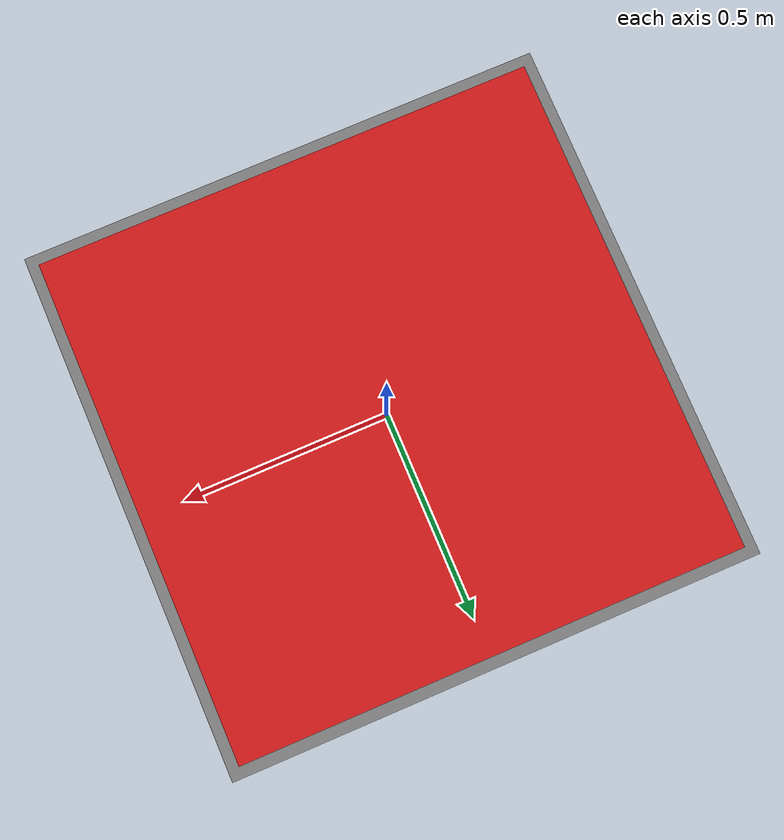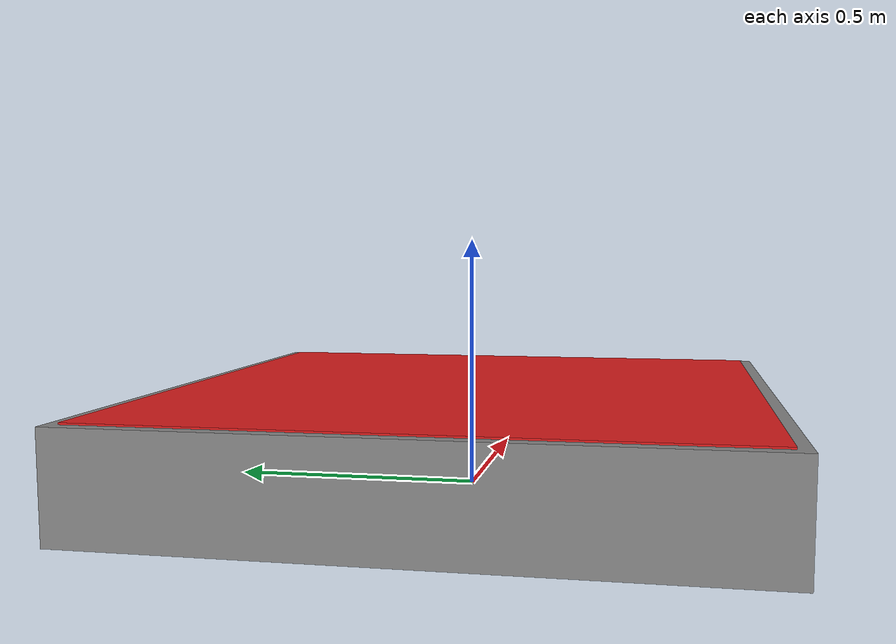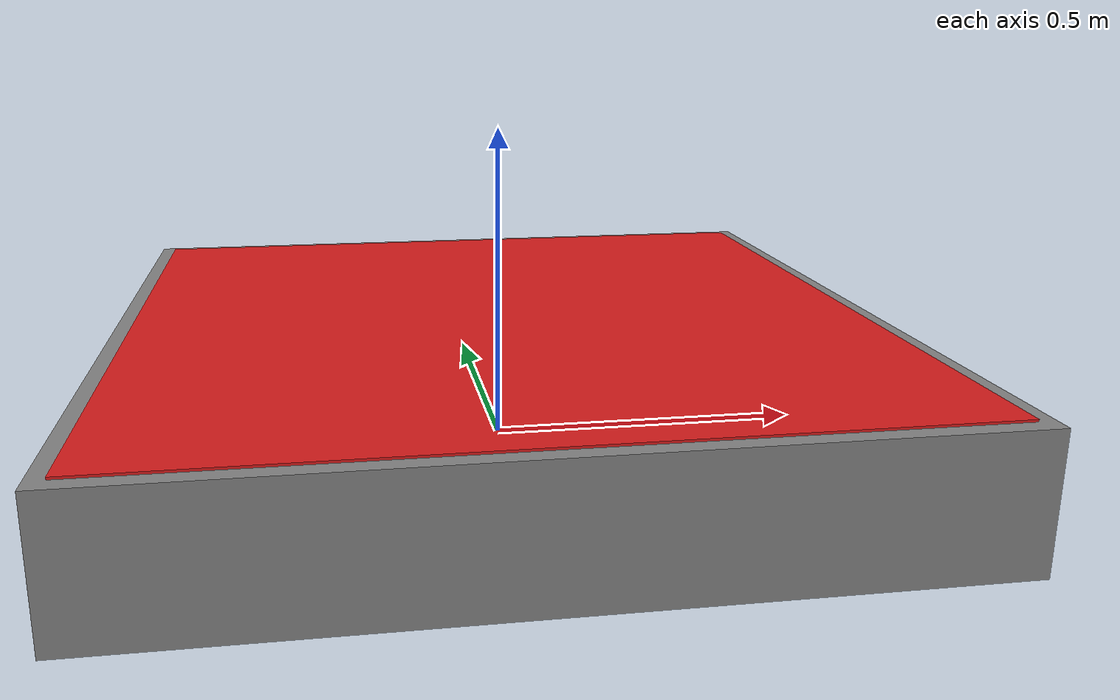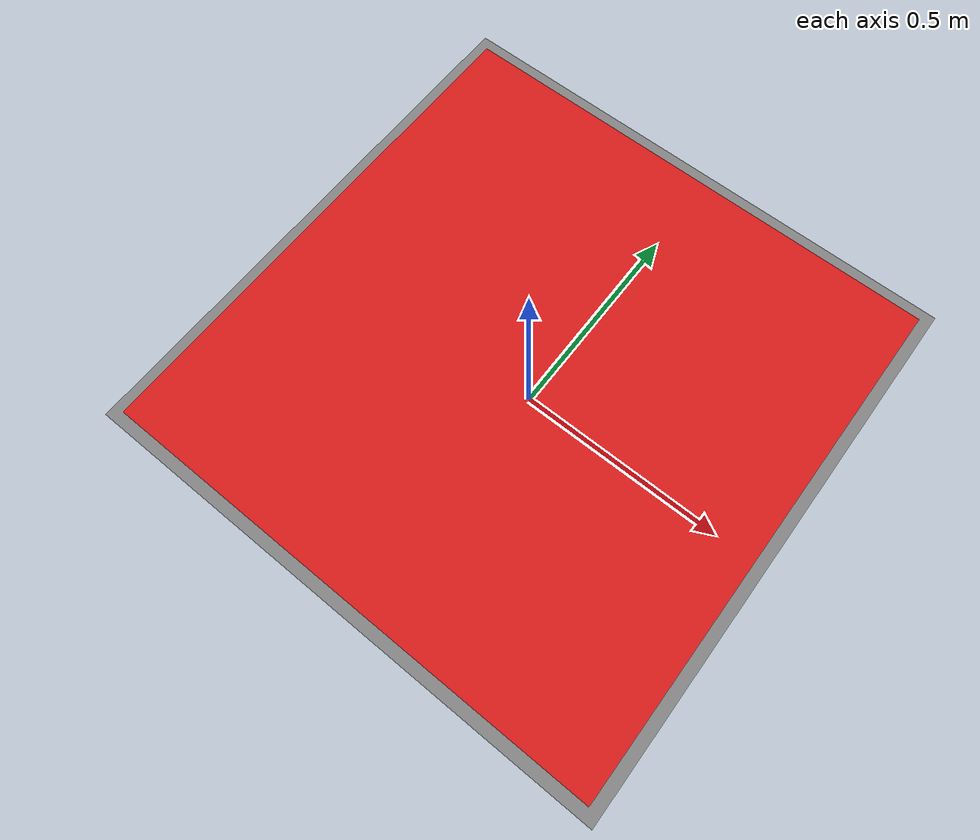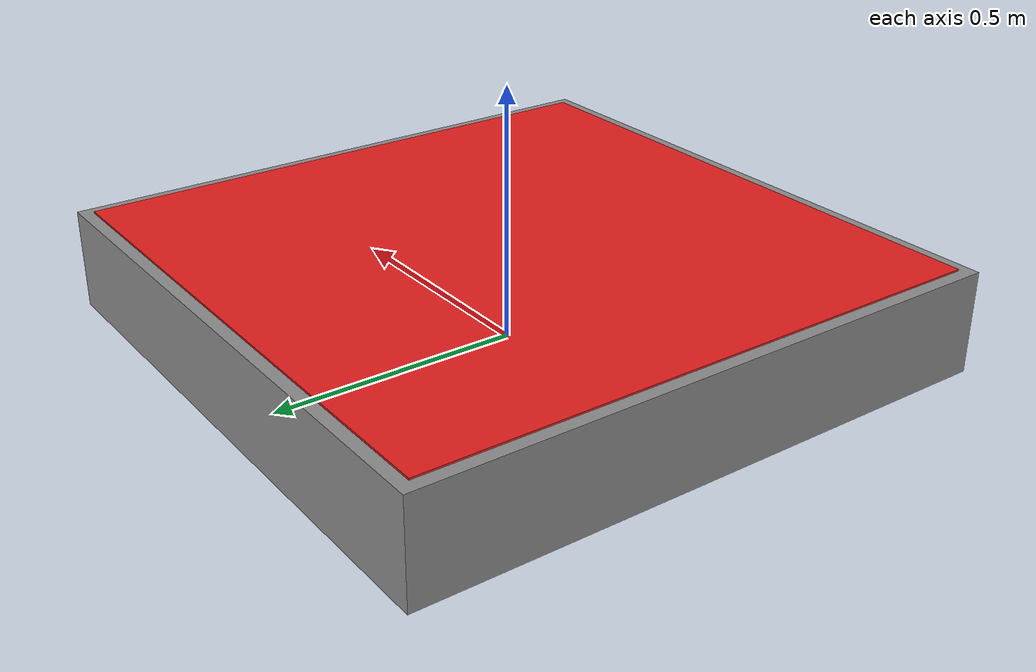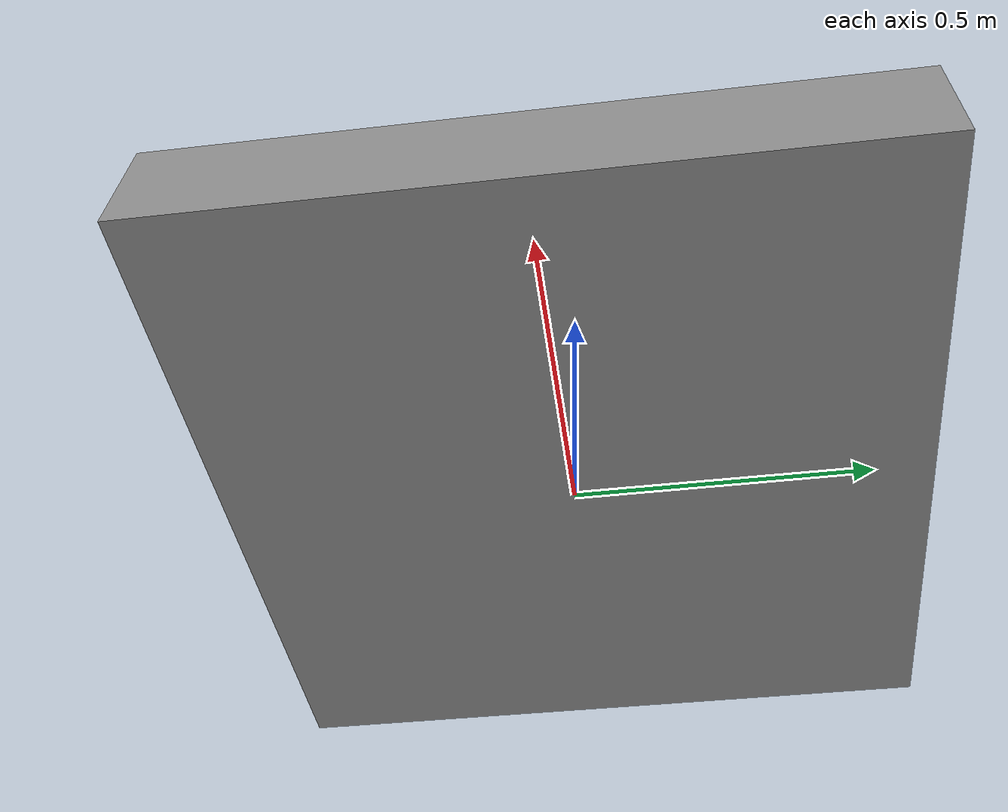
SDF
<?xml version="1.0" ?>
<sdf version="1.9">
  <model name="airpost_drop_pad">
    <static>true</static>
    <link name="link">
      <collision name="c"><pose>0 0 0.1 0 0 0</pose><geometry><box><size>1.2 1.2 0.2</size></box></geometry></collision>
      <visual name="sides"><pose>0 0 0.1 0 0 0</pose><geometry><box><size>1.2 1.2 0.2</size></box></geometry>
        <material><ambient>0.5 0.5 0.5 1</ambient><diffuse>0.55 0.55 0.55 1</diffuse></material></visual>
      <visual name="top"><pose>0 0 0.201 0 0 0</pose><geometry><box><size>1.15 1.15 0.005</size></box></geometry>
        <material><ambient>0.8 0.1 0.1 1</ambient><diffuse>0.9 0.12 0.12 1</diffuse></material></visual>
    </link>
  </model>
</sdf>
